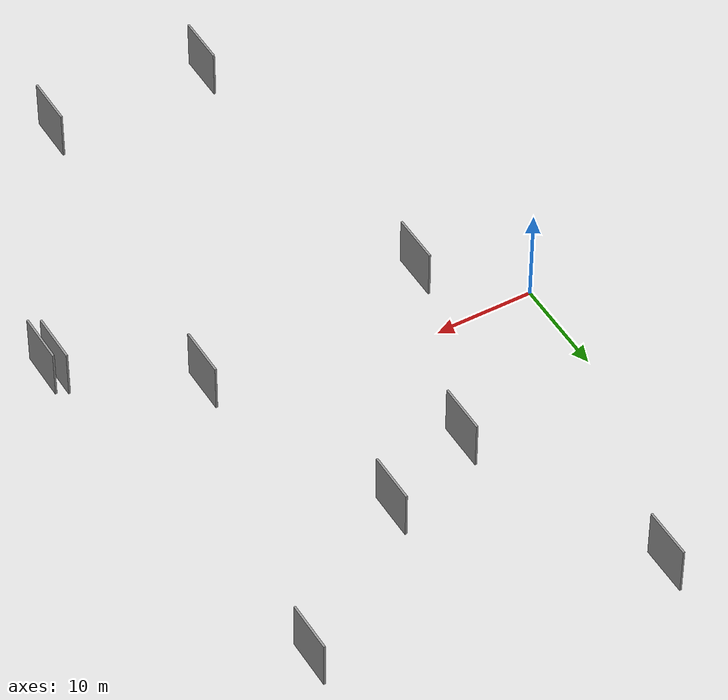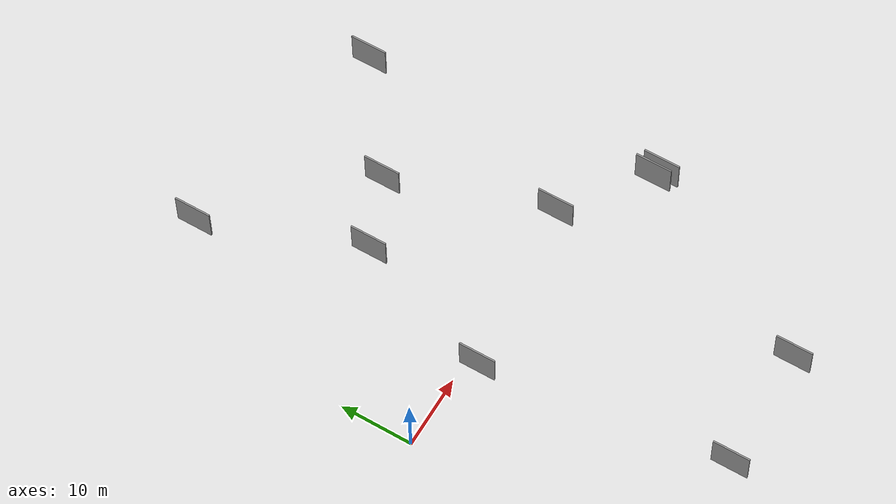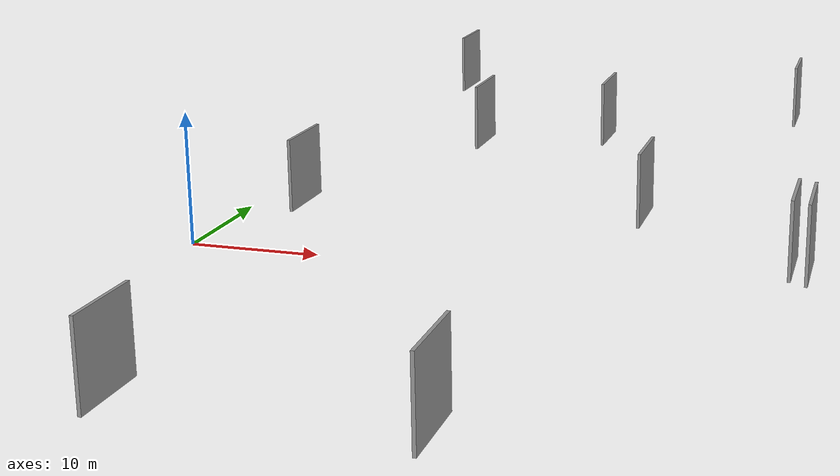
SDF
<sdf version="1.6">
 <world name="default">
  <scene>
   <sky><clouds><speed>12</speed></clouds></sky>
   <ambient>0.4 0.4 0.4 1</ambient>
   <background>0.7 0.7 0.7 1</background>
   <shadows>1</shadows>
  </scene>
  <gravity>0 0 -9.8066</gravity>
  <magnetic_field>6e-06 2.3e-05 -4.2e-05</magnetic_field>
  <physics default="0" name="default_physics" type="ode">
   <ode>
    <solver>
     <type>quick</type>
     <iters>10</iters>
     <sor>1.0</sor>
     <use_dynamic_moi_rescaling>0</use_dynamic_moi_rescaling>
    </solver>
    <constraints>
     <cfm>0</cfm>
     <erp>0.2</erp>
     <contact_max_correcting_vel>100</contact_max_correcting_vel>
     <contact_surface_layer>0.001</contact_surface_layer>
    </constraints>
   </ode>
   <max_step_size>0.004</max_step_size>
   <real_time_factor>1</real_time_factor>
   <real_time_update_rate>250</real_time_update_rate>
  </physics>
  <light name="sun" type="directional">
   <pose>0 0 10 0 0 0</pose>
   <diffuse>0.8 0.8 0.8 1</diffuse>
   <specular>0.2 0.2 0.2 1</specular>
   <attenuation>
    <range>1000</range>
    <constant>0.9</constant>
    <linear>0.01</linear>
    <quadratic>0.001</quadratic>
   </attenuation>
   <direction>-0.5 0.1 -0.9</direction>
  </light>
  <model name="grey_wall_1">
   <static>1</static>
   <pose>14.7167 -36.0047 5.0 0.000000 0.000000 1.570796</pose>
   <link name="link">
    <pose>0 0 2.50 0 0 0</pose>
    <collision name="collision"><geometry><box><size>5.00 0.2 5.00</size></box></geometry></collision>
    <visual name="visual">
     <cast_shadows>0</cast_shadows>
     <geometry><box><size>5.00 0.2 5.00</size></box></geometry>
     <material>
      <script>
       <uri>model://grey_wall/materials/scripts</uri>
       <uri>model://grey_wall/materials/textures</uri>
       <name>vrc/grey_wall</name>
      </script>
     </material>
    </visual>
   </link>
  </model>
  <model name="grey_wall_2">
   <static>1</static>
   <pose>10.1076 37.5436 5.0 0.000000 0.000000 1.570796</pose>
   <link name="link">
    <pose>0 0 2.50 0 0 0</pose>
    <collision name="collision"><geometry><box><size>5.00 0.2 5.00</size></box></geometry></collision>
    <visual name="visual">
     <cast_shadows>0</cast_shadows>
     <geometry><box><size>5.00 0.2 5.00</size></box></geometry>
     <material>
      <script>
       <uri>model://grey_wall/materials/scripts</uri>
       <uri>model://grey_wall/materials/textures</uri>
       <name>vrc/grey_wall</name>
      </script>
     </material>
    </visual>
   </link>
  </model>
  <model name="grey_wall_3">
   <static>1</static>
   <pose>10.6382 -3.1360 5.0 0.000000 0.000000 1.570796</pose>
   <link name="link">
    <pose>0 0 2.50 0 0 0</pose>
    <collision name="collision"><geometry><box><size>5.00 0.2 5.00</size></box></geometry></collision>
    <visual name="visual">
     <cast_shadows>0</cast_shadows>
     <geometry><box><size>5.00 0.2 5.00</size></box></geometry>
     <material>
      <script>
       <uri>model://grey_wall/materials/scripts</uri>
       <uri>model://grey_wall/materials/textures</uri>
       <name>vrc/grey_wall</name>
      </script>
     </material>
    </visual>
   </link>
  </model>
  <model name="grey_wall_4">
   <static>1</static>
   <pose>34.1046 -0.6501 5.0 0.000000 0.000000 1.570796</pose>
   <link name="link">
    <pose>0 0 2.50 0 0 0</pose>
    <collision name="collision"><geometry><box><size>5.00 0.2 5.00</size></box></geometry></collision>
    <visual name="visual">
     <cast_shadows>0</cast_shadows>
     <geometry><box><size>5.00 0.2 5.00</size></box></geometry>
     <material>
      <script>
       <uri>model://grey_wall/materials/scripts</uri>
       <uri>model://grey_wall/materials/textures</uri>
       <name>vrc/grey_wall</name>
      </script>
     </material>
    </visual>
   </link>
  </model>
  <model name="grey_wall_5">
   <static>1</static>
   <pose>27.1451 20.4358 5.0 0.000000 0.000000 1.570796</pose>
   <link name="link">
    <pose>0 0 2.50 0 0 0</pose>
    <collision name="collision"><geometry><box><size>5.00 0.2 5.00</size></box></geometry></collision>
    <visual name="visual">
     <cast_shadows>0</cast_shadows>
     <geometry><box><size>5.00 0.2 5.00</size></box></geometry>
     <material>
      <script>
       <uri>model://grey_wall/materials/scripts</uri>
       <uri>model://grey_wall/materials/textures</uri>
       <name>vrc/grey_wall</name>
      </script>
     </material>
    </visual>
   </link>
  </model>
  <model name="grey_wall_6">
   <static>1</static>
   <pose>44.6278 -8.7062 5.0 0.000000 0.000000 1.570796</pose>
   <link name="link">
    <pose>0 0 2.50 0 0 0</pose>
    <collision name="collision"><geometry><box><size>5.00 0.2 5.00</size></box></geometry></collision>
    <visual name="visual">
     <cast_shadows>0</cast_shadows>
     <geometry><box><size>5.00 0.2 5.00</size></box></geometry>
     <material>
      <script>
       <uri>model://grey_wall/materials/scripts</uri>
       <uri>model://grey_wall/materials/textures</uri>
       <name>vrc/grey_wall</name>
      </script>
     </material>
    </visual>
   </link>
  </model>
  <model name="grey_wall_7">
   <static>1</static>
   <pose>31.0272 -35.8492 5.0 0.000000 0.000000 1.570796</pose>
   <link name="link">
    <pose>0 0 2.50 0 0 0</pose>
    <collision name="collision"><geometry><box><size>5.00 0.2 5.00</size></box></geometry></collision>
    <visual name="visual">
     <cast_shadows>0</cast_shadows>
     <geometry><box><size>5.00 0.2 5.00</size></box></geometry>
     <material>
      <script>
       <uri>model://grey_wall/materials/scripts</uri>
       <uri>model://grey_wall/materials/textures</uri>
       <name>vrc/grey_wall</name>
      </script>
     </material>
    </visual>
   </link>
  </model>
  <model name="grey_wall_8">
   <static>1</static>
   <pose>41.3994 31.0651 5.0 0.000000 0.000000 1.570796</pose>
   <link name="link">
    <pose>0 0 2.50 0 0 0</pose>
    <collision name="collision"><geometry><box><size>5.00 0.2 5.00</size></box></geometry></collision>
    <visual name="visual">
     <cast_shadows>0</cast_shadows>
     <geometry><box><size>5.00 0.2 5.00</size></box></geometry>
     <material>
      <script>
       <uri>model://grey_wall/materials/scripts</uri>
       <uri>model://grey_wall/materials/textures</uri>
       <name>vrc/grey_wall</name>
      </script>
     </material>
    </visual>
   </link>
  </model>
  <model name="grey_wall_9">
   <static>1</static>
   <pose>45.6610 -9.2946 5.0 0.000000 0.000000 1.570796</pose>
   <link name="link">
    <pose>0 0 2.50 0 0 0</pose>
    <collision name="collision"><geometry><box><size>5.00 0.2 5.00</size></box></geometry></collision>
    <visual name="visual">
     <cast_shadows>0</cast_shadows>
     <geometry><box><size>5.00 0.2 5.00</size></box></geometry>
     <material>
      <script>
       <uri>model://grey_wall/materials/scripts</uri>
       <uri>model://grey_wall/materials/textures</uri>
       <name>vrc/grey_wall</name>
      </script>
     </material>
    </visual>
   </link>
  </model>
  <model name="grey_wall_10">
   <static>1</static>
   <pose>17.7595 16.6535 5.0 0.000000 0.000000 1.570796</pose>
   <link name="link">
    <pose>0 0 2.50 0 0 0</pose>
    <collision name="collision"><geometry><box><size>5.00 0.2 5.00</size></box></geometry></collision>
    <visual name="visual">
     <cast_shadows>0</cast_shadows>
     <geometry><box><size>5.00 0.2 5.00</size></box></geometry>
     <material>
      <script>
       <uri>model://grey_wall/materials/scripts</uri>
       <uri>model://grey_wall/materials/textures</uri>
       <name>vrc/grey_wall</name>
      </script>
     </material>
    </visual>
   </link>
  </model>
 </world>
</sdf>
